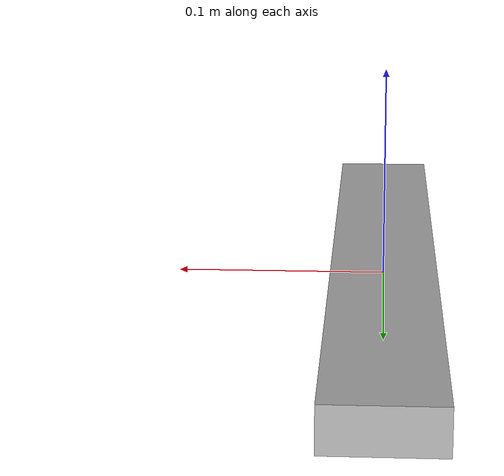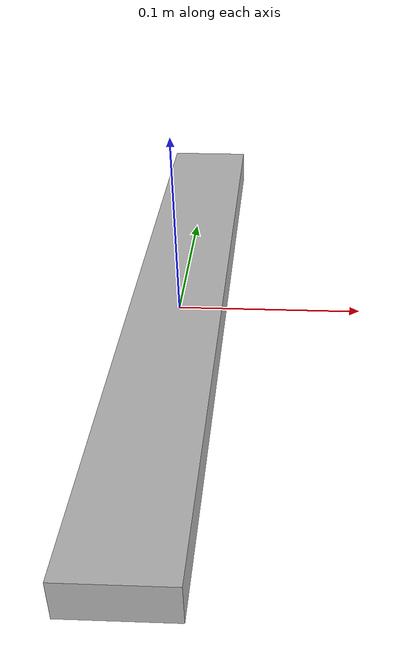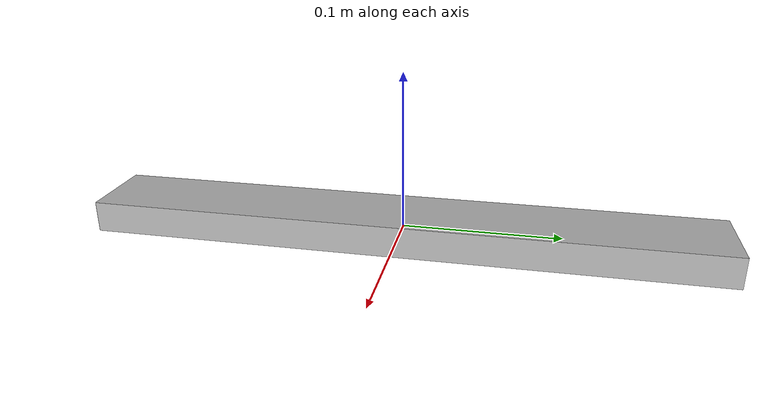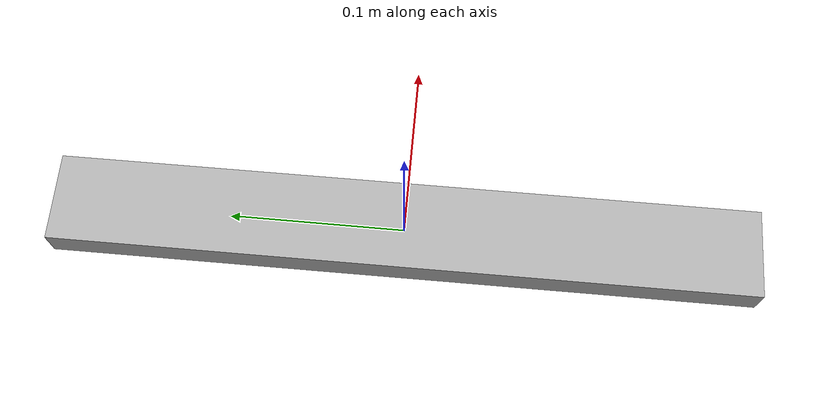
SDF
<?xml version="1.0"?>

<sdf version="1.6">
  <world name="default">

    <!-- Sun -->
    <include>
      <uri>model://sun</uri>
    </include>

    <!-- Seafloor (surface is at z==0) -->
    <model name="seafloor">
      <include>
        <static>true</static>
        <uri>model://seafloor</uri>
      </include>
      <pose>0 0 -2 0 0 0</pose>
    </model>

    <!-- Stereo camera model -->
    <model name="camera_model">
      <pose>0 0 0 0 1.570796327 0</pose>
      <!-- Not static: the motion plugin moves the camera around -->
      <static>false</static>
      <link name="camera_link">
        <!-- Turn gravity off, otherwise the camera moves toward the floor -->
        <gravity>0</gravity>
        <inertial> <!-- inertial tag is REQUIRED for Gazebo -->
          <pose frame=''>0 0 0 0 0 0</pose>
          <mass>1</mass>
          <inertia>
            <ixx>0.1</ixx>
            <ixy>0</ixy>
            <ixz>0</ixz>
            <iyy>0.1</iyy>
            <iyz>0</iyz>
            <izz>0.1</izz>
          </inertia>
        </inertial>
        <visual name='camera_link_visual'>
          <pose frame=''>0 0 0 0 0 0</pose>
          <geometry>
            <box>
              <size>0.02 0.4 0.05</size>
            </box>
          </geometry>
        </visual>
        <sensor type="multicamera" name="stereo">
          <pose>0 0 0 0 0 0</pose>
          <update_rate>30</update_rate>
          <visualize>true</visualize>
          <camera name="left">
            <!-- Left camera frame == camera_link -->
            <pose>0 0 0 0 0 0</pose>
            <horizontal_fov>1.4</horizontal_fov>
            <image>
              <width>800</width>
              <height>600</height>
              <format>R8G8B8</format>
            </image>
            <clip>
              <near>0.02</near>
              <far>300</far>
            </clip>
            <noise>
              <type>gaussian</type>
              <mean>0.0</mean>
              <stddev>0.007</stddev>
            </noise>
          </camera>
          <camera name="right">
            <!-- Right camera frame is 0.4m to the right (-0.4m to the left) of camera_link -->
            <pose>0 -0.4 0 0 0 0</pose>
            <horizontal_fov>1.4</horizontal_fov>
            <image>
              <width>800</width>
              <height>600</height>
              <format>R8G8B8</format>
            </image>
            <clip>
              <near>0.02</near>
              <far>300</far>
            </clip>
            <noise>
              <type>gaussian</type>
              <mean>0.0</mean>
              <stddev>0.007</stddev>
            </noise>
          </camera>
          <plugin name="camera_controller" filename="libgazebo_ros_camera.so">
            <!-- Omit camera_name, will default to sensor name -->
            <frame_name>left_camera_frame</frame_name>
            <hack_baseline>0.4</hack_baseline>
          </plugin>
        </sensor>
      </link>
      <plugin name="MotionPlugin" filename="libMotionPlugin.so">
        <link name="camera_link">
          <period>60</period>
          <linear_vel>0.1 0.05 0</linear_vel>
          <angular_vel>0 0 0.1</angular_vel>
        </link>
      </plugin>
      <plugin name="p3d_test" filename="libgazebo_ros_p3d.so">
        <ros>
          <argument>odom:=ground_truth</argument>
        </ros>
        <update_rate>30.0</update_rate>
        <body_name>camera_link</body_name>
        <frame_name>odom</frame_name>
        <xyz_offsets>0 0 0</xyz_offsets>
        <rpy_offsets>0 0 0</rpy_offsets>
      </plugin>
    </model>

  </world>
</sdf>

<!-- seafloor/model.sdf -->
<sdf version="1.6">
  <model name="seafloor">
    <static>true</static>
    <link name="seafloor_link">
      <collision name="collision">
        <geometry>
          <plane>
            <normal>0 0 1</normal>
            <size>10 10</size>
          </plane>
        </geometry>
        <surface>
          <friction>
            <ode>
              <mu>100</mu>
              <mu2>50</mu2>
            </ode>
          </friction>
        </surface>
      </collision>
      <visual name="visual">
        <cast_shadows>false</cast_shadows>
        <geometry>
          <plane>
            <normal>0 0 1</normal>
            <size>10 10</size>
          </plane>
        </geometry>
        <material>
          <script>
            <uri>model://seafloor/materials/scripts</uri>
            <uri>model://seafloor/materials/textures</uri>
            <name>Seafloor/Rocks</name>
          </script>
        </material>
      </visual>
    </link>
  </model>
</sdf>
